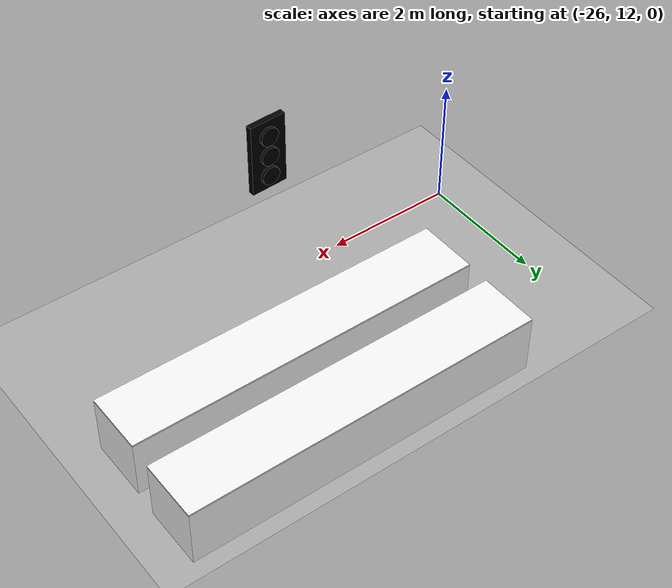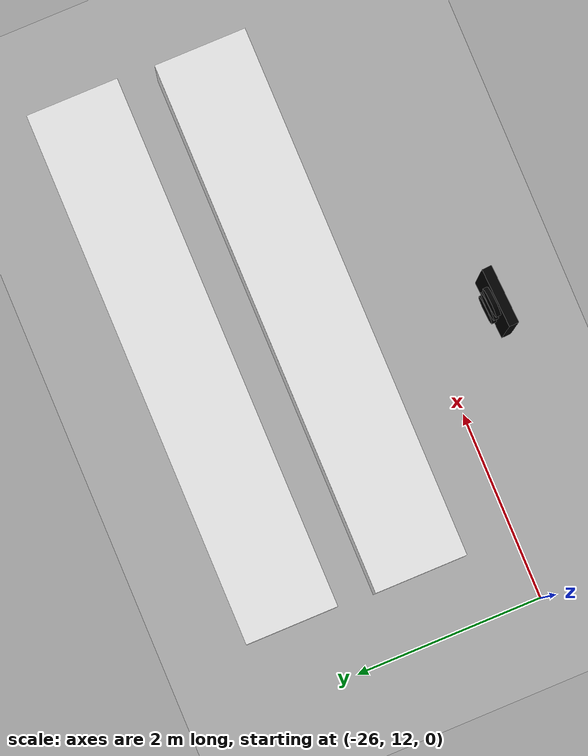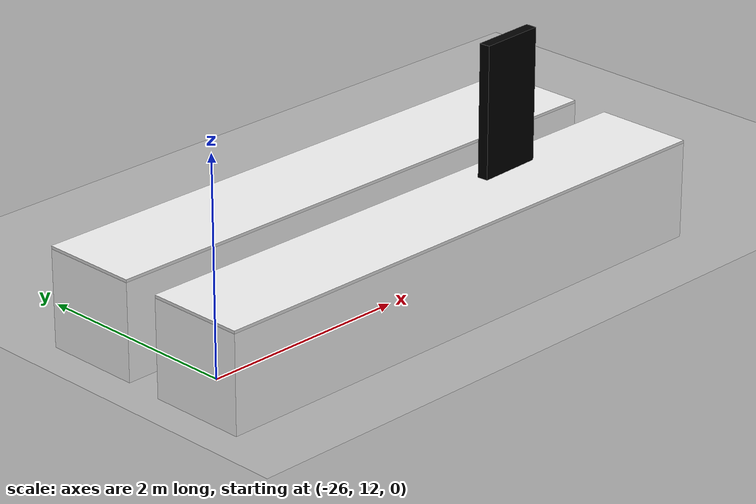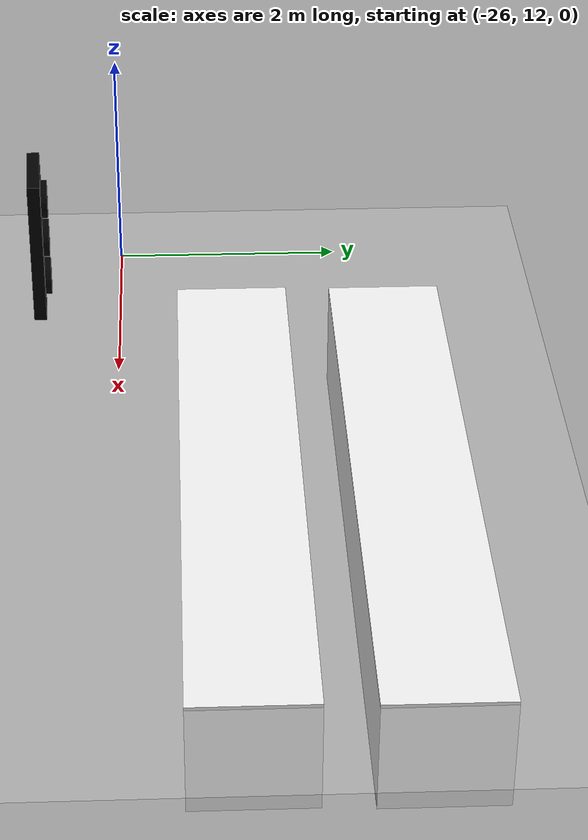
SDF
<sdf version="1.7">
 <world name="default">
  <model name="ground_plane">
   <static>1</static>
   <link name="link">
    <collision name="collision">
     <geometry><plane><normal>0 0 1</normal><size>100 100</size></plane></geometry>
     <surface><friction><ode><mu>100</mu><mu2>50</mu2></ode></friction></surface>
    </collision>
    <visual name="visual">
     <cast_shadows>0</cast_shadows>
     <geometry><plane><normal>0 0 1</normal><size>100 100</size></plane></geometry>
     <material>
      <script><uri>file://media/materials/scripts/gazebo.material</uri><name>Gazebo/Grey</name></script>
     </material>
    </visual>
   </link>
  </model>
  <model name="white_path_clone_clone">
   <link name="link_1">
    <inertial>
     <mass>5.81657</mass>
     <inertia><ixx>0.969428</ixx><ixy>0</ixy><ixz>0</ixz><iyy>16.8837</iyy><iyz>0</iyz><izz>16.8837</izz></inertia>
    </inertial>
    <pose>2e-06 -2e-06 0 0 -0 0</pose>
    <gravity>0</gravity>
    <visual name="visual">
     <geometry><box><size>5.81655 1 1</size></box></geometry>
     <material>
      <lighting>1</lighting>
      <script><uri>file://media/materials/scripts/gazebo.material</uri><name>Gazebo/White</name></script>
      <shader type="pixel"><normal_map>__default__</normal_map></shader>
      <ambient>1 1 1 1</ambient>
      <diffuse>1 1 1 1</diffuse>
      <specular>0.01 0.01 0.01 1</specular>
      <emissive>0 0 0 1</emissive>
     </material>
    </visual>
   </link>
   <static>0</static>
   <pose>-22.3846 14.4189 -0.477605 0 -0 0</pose>
  </model>
  <model name="white_path_clone_clone_clone">
   <link name="link_1">
    <inertial>
     <mass>5.81657</mass>
     <inertia><ixx>0.969428</ixx><ixy>0</ixy><ixz>0</ixz><iyy>16.8837</iyy><iyz>0</iyz><izz>16.8837</izz></inertia>
    </inertial>
    <pose>2e-06 -2e-06 0 0 -0 0</pose>
    <gravity>0</gravity>
    <visual name="visual">
     <geometry><box><size>5.81655 1 1</size></box></geometry>
     <material>
      <lighting>1</lighting>
      <script><uri>file://media/materials/scripts/gazebo.material</uri><name>Gazebo/White</name></script>
      <shader type="pixel"><normal_map>__default__</normal_map></shader>
      <ambient>1 1 1 1</ambient>
      <diffuse>1 1 1 1</diffuse>
      <specular>0.01 0.01 0.01 1</specular>
      <emissive>0 0 0 1</emissive>
     </material>
    </visual>
   </link>
   <static>0</static>
   <pose>-22.4098 13.0182 -0.477605 0 -0 0</pose>
  </model>
  <model name="gazebo_traffic_light_clone">
   <static>0</static>
   <link name="light_fixture">
    <gravity>0</gravity>
    <visual name="visual">
     <pose>0 0 0.535 0 -0 0</pose>
     <geometry><box><size>0.1 0.6 1.2</size></box></geometry>
     <material><ambient>0 0 0 1</ambient><diffuse>0 0 0 1</diffuse><specular>0 0 0 1</specular></material>
    </visual>
    <collision name="collision">
     <pose>0 0 0.535 0 -0 0</pose>
     <geometry><box><size>0.1 0.6 1.2</size></box></geometry>
    </collision>
    <inertial>
     <inertia><ixx>1</ixx><ixy>0</ixy><ixz>0</ixz><iyy>1</iyy><iyz>0</iyz><izz>1</izz></inertia>
     <mass>1</mass>
    </inertial>
   </link>
   <link name="green_off">
    <gravity>0</gravity>
    <pose>0.075 0 0.175 0 1.5707 0</pose>
    <collision name="collision">
     <geometry><cylinder><radius>0.15</radius><length>0.05</length></cylinder></geometry>
    </collision>
    <visual name="visual">
     <geometry><cylinder><radius>0.15</radius><length>0.05</length></cylinder></geometry>
     <material>
      <ambient>0 1 0 1</ambient>
      <diffuse>0 0 0 1</diffuse>
      <specular>0 0 0 1</specular>
      <emissive>0 0 0 1</emissive>
     </material>
    </visual>
    <inertial>
     <inertia><ixx>1</ixx><ixy>0</ixy><ixz>0</ixz><iyy>1</iyy><iyz>0</iyz><izz>1</izz></inertia>
     <mass>1</mass>
    </inertial>
   </link>
   <link name="green_on">
    <gravity>0</gravity>
    <pose>0 0 0.175 0 1.5707 0</pose>
    <collision name="collision">
     <geometry><cylinder><radius>0.15</radius><length>0.002</length></cylinder></geometry>
    </collision>
    <visual name="visual">
     <geometry><cylinder><radius>0.15</radius><length>0.002</length></cylinder></geometry>
     <material>
      <ambient>0 0 0 1</ambient>
      <diffuse>0 0 0 1</diffuse>
      <specular>0 0 0 1</specular>
      <emissive>0 1 0 1</emissive>
     </material>
    </visual>
    <inertial>
     <inertia><ixx>1</ixx><ixy>0</ixy><ixz>0</ixz><iyy>1</iyy><iyz>0</iyz><izz>1</izz></inertia>
     <mass>1</mass>
    </inertial>
   </link>
   <link name="yellow_off">
    <gravity>0</gravity>
    <pose>0.075 0 0.525 0 1.5707 0</pose>
    <collision name="collision">
     <geometry><cylinder><radius>0.15</radius><length>0.05</length></cylinder></geometry>
    </collision>
    <visual name="visual">
     <geometry><cylinder><radius>0.15</radius><length>0.05</length></cylinder></geometry>
     <material>
      <ambient>1 1 0 1</ambient>
      <diffuse>0 0 0 1</diffuse>
      <specular>0 0 0 1</specular>
      <emissive>0 0 0 1</emissive>
     </material>
    </visual>
    <inertial>
     <inertia><ixx>1</ixx><ixy>0</ixy><ixz>0</ixz><iyy>1</iyy><iyz>0</iyz><izz>1</izz></inertia>
     <mass>1</mass>
    </inertial>
   </link>
   <link name="yellow_on">
    <gravity>0</gravity>
    <pose>0 0 0.525 0 1.5707 0</pose>
    <collision name="collision">
     <geometry><cylinder><radius>0.15</radius><length>0.002</length></cylinder></geometry>
    </collision>
    <visual name="visual">
     <geometry><cylinder><radius>0.15</radius><length>0.002</length></cylinder></geometry>
     <material>
      <ambient>0 0 0 1</ambient>
      <diffuse>0 0 0 1</diffuse>
      <specular>0 0 0 1</specular>
      <emissive>1 1 0 1</emissive>
     </material>
    </visual>
    <inertial>
     <inertia><ixx>1</ixx><ixy>0</ixy><ixz>0</ixz><iyy>1</iyy><iyz>0</iyz><izz>1</izz></inertia>
     <mass>1</mass>
    </inertial>
   </link>
   <link name="red_off">
    <gravity>0</gravity>
    <pose>0.075 0 0.875 0 1.5707 0</pose>
    <collision name="collision">
     <geometry><cylinder><radius>0.15</radius><length>0.05</length></cylinder></geometry>
    </collision>
    <visual name="visual">
     <geometry><cylinder><radius>0.15</radius><length>0.05</length></cylinder></geometry>
     <material>
      <ambient>1 0 0 1</ambient>
      <diffuse>0 0 0 1</diffuse>
      <specular>0 0 0 1</specular>
      <emissive>0 0 0 1</emissive>
     </material>
    </visual>
    <inertial>
     <inertia><ixx>1</ixx><ixy>0</ixy><ixz>0</ixz><iyy>1</iyy><iyz>0</iyz><izz>1</izz></inertia>
     <mass>1</mass>
    </inertial>
   </link>
   <link name="red_on">
    <gravity>0</gravity>
    <pose>0 0 0.875 0 1.5707 0</pose>
    <collision name="collision">
     <geometry><cylinder><radius>0.15</radius><length>0.002</length></cylinder></geometry>
    </collision>
    <visual name="visual">
     <geometry><cylinder><radius>0.15</radius><length>0.002</length></cylinder></geometry>
     <material>
      <ambient>0 0 0 1</ambient>
      <diffuse>0 0 0 1</diffuse>
      <specular>0 0 0 1</specular>
      <emissive>1 0 0 1</emissive>
     </material>
    </visual>
    <inertial>
     <inertia><ixx>1</ixx><ixy>0</ixy><ixz>0</ixz><iyy>1</iyy><iyz>0</iyz><izz>1</izz></inertia>
     <mass>1</mass>
    </inertial>
   </link>
   <joint name="green_switch" type="prismatic">
    <parent>green_off</parent>
    <child>green_on</child>
    <axis>
     <xyz>0 0 1</xyz>
     <limit><lower>0</lower><upper>0.101</upper></limit>
     <dynamics><spring_reference>0</spring_reference><spring_stiffness>0</spring_stiffness></dynamics>
    </axis>
   </joint>
   <joint name="green_base" type="fixed"><parent>light_fixture</parent><child>green_off</child></joint>
   <joint name="yellow_switch" type="prismatic">
    <parent>yellow_off</parent>
    <child>yellow_on</child>
    <axis>
     <xyz>0 0 1</xyz>
     <limit><lower>0</lower><upper>0.101</upper></limit>
     <dynamics><spring_reference>0</spring_reference><spring_stiffness>0</spring_stiffness></dynamics>
    </axis>
   </joint>
   <joint name="yellow_base" type="fixed"><parent>light_fixture</parent><child>yellow_off</child></joint>
   <joint name="red_switch" type="prismatic">
    <parent>red_off</parent>
    <child>red_on</child>
    <axis>
     <xyz>0 0 1</xyz>
     <limit><lower>0</lower><upper>0.101</upper></limit>
     <dynamics><spring_reference>0</spring_reference><spring_stiffness>0</spring_stiffness></dynamics>
    </axis>
   </joint>
   <joint name="red_base" type="fixed"><parent>light_fixture</parent><child>red_off</child></joint>
   <pose>-23.1988 11.4136 1.25918 0.001933 0.000533 1.61696</pose>
  </model>
 </world>
</sdf>
